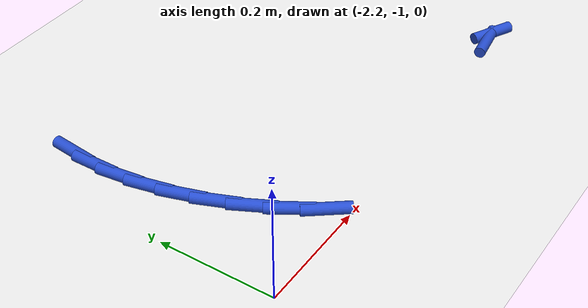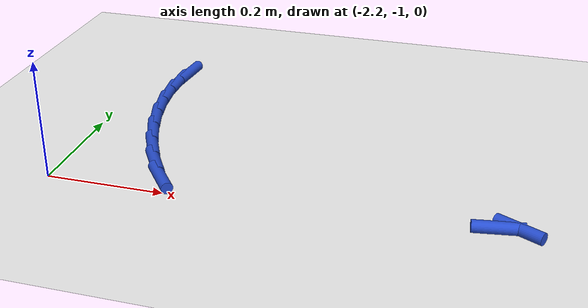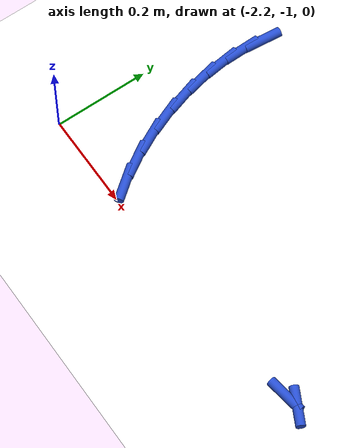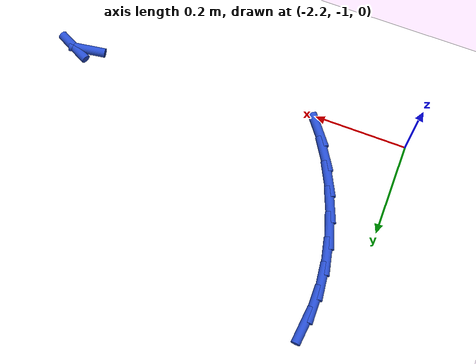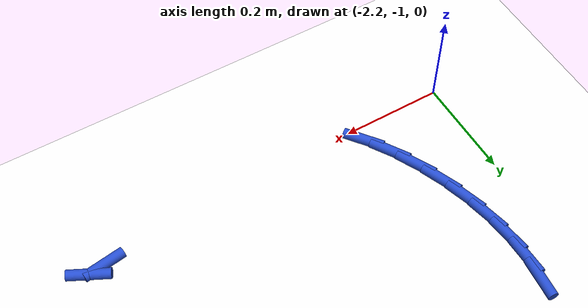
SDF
<sdf version="1.6">
 <world name="default">
  <model name="ground_plane">
   <static>1</static>
   <link name="link">
    <collision name="collision">
     <geometry><plane><normal>0 0 1</normal><size>100 100</size></plane></geometry>
     <surface><friction><ode><mu>100</mu><mu2>50</mu2></ode></friction></surface>
    </collision>
    <visual name="visual">
     <cast_shadows>0</cast_shadows>
     <geometry><plane><normal>0 0 1</normal><size>100 100</size></plane></geometry>
     <material>
      <script><uri>file://media/materials/scripts/gazebo.material</uri><name>Gazebo/WhiteGlow</name></script>
     </material>
    </visual>
   </link>
  </model>
  <model name="line">
   <link name="link_94">
    <pose>-2.1228163236060706 -0.5646316994664993 0.01 0 1.57 1.4698711564828346</pose>
    <collision name="collision">
     <geometry><cylinder><radius>0.01</radius><length>0.08</length></cylinder></geometry>
    </collision>
    <visual name="visual">
     <material>
      <script><name>Gazebo/Blue</name><uri>file://media/materials/scripts/gazebo.material</uri></script>
     </material>
     <geometry><cylinder><radius>0.01</radius><length>0.08</length></cylinder></geometry>
    </visual>
   </link>
   <link name="link_95">
    <pose>-2.127615079992258 -0.6120178182616356 0.01 0 1.57 -1.5533062687913195</pose>
    <collision name="collision">
     <geometry><cylinder><radius>0.01</radius><length>0.08</length></cylinder></geometry>
    </collision>
    <visual name="visual">
     <material>
      <script><name>Gazebo/Blue</name><uri>file://media/materials/scripts/gazebo.material</uri></script>
     </material>
     <geometry><cylinder><radius>0.01</radius><length>0.08</length></cylinder></geometry>
    </visual>
   </link>
   <link name="link_96">
    <pose>-2.126739090122472 -0.6620977291113781 0.01 0 1.57 -1.4459167454490598</pose>
    <collision name="collision">
     <geometry><cylinder><radius>0.01</radius><length>0.08</length></cylinder></geometry>
    </collision>
    <visual name="visual">
     <material>
      <script><name>Gazebo/Blue</name><uri>file://media/materials/scripts/gazebo.material</uri></script>
     </material>
     <geometry><cylinder><radius>0.01</radius><length>0.08</length></cylinder></geometry>
    </visual>
   </link>
   <link name="link_97">
    <pose>-2.120198588026109 -0.7141996589241612 0.01 0 1.57 -1.3514911201738447</pose>
    <collision name="collision">
     <geometry><cylinder><radius>0.01</radius><length>0.08</length></cylinder></geometry>
    </collision>
    <visual name="visual">
     <material>
      <script><name>Gazebo/Blue</name><uri>file://media/materials/scripts/gazebo.material</uri></script>
     </material>
     <geometry><cylinder><radius>0.01</radius><length>0.08</length></cylinder></geometry>
    </visual>
   </link>
   <link name="link_98">
    <pose>-2.108368124961698 -0.7672772451023554 0.01 0 1.57 -1.2648053873676295</pose>
    <collision name="collision">
     <geometry><cylinder><radius>0.01</radius><length>0.08</length></cylinder></geometry>
    </collision>
    <visual name="visual">
     <material>
      <script><name>Gazebo/Blue</name><uri>file://media/materials/scripts/gazebo.material</uri></script>
     </material>
     <geometry><cylinder><radius>0.01</radius><length>0.08</length></cylinder></geometry>
    </visual>
   </link>
   <link name="link_99">
    <pose>-2.0916227336219175 -0.8202836300396862 0.01 0 1.57 -1.181516415351661</pose>
    <collision name="collision">
     <geometry><cylinder><radius>0.01</radius><length>0.08</length></cylinder></geometry>
    </collision>
    <visual name="visual">
     <material>
      <script><name>Gazebo/Blue</name><uri>file://media/materials/scripts/gazebo.material</uri></script>
     </material>
     <geometry><cylinder><radius>0.01</radius><length>0.08</length></cylinder></geometry>
    </visual>
   </link>
   <link name="link_100">
    <pose>-2.0703374466994426 -0.8721719561298746 0.01 0 1.57 -1.0977261099730486</pose>
    <collision name="collision">
     <geometry><cylinder><radius>0.01</radius><length>0.08</length></cylinder></geometry>
    </collision>
    <visual name="visual">
     <material>
      <script><name>Gazebo/Blue</name><uri>file://media/materials/scripts/gazebo.material</uri></script>
     </material>
     <geometry><cylinder><radius>0.01</radius><length>0.08</length></cylinder></geometry>
    </visual>
   </link>
   <link name="link_101">
    <pose>-2.0448872968869516 -0.9218953657666458 0.01 0 1.57 -1.009569811970077</pose>
    <collision name="collision">
     <geometry><cylinder><radius>0.01</radius><length>0.08</length></cylinder></geometry>
    </collision>
    <visual name="visual">
     <material>
      <script><name>Gazebo/Blue</name><uri>file://media/materials/scripts/gazebo.material</uri></script>
     </material>
     <geometry><cylinder><radius>0.01</radius><length>0.08</length></cylinder></geometry>
    </visual>
   </link>
   <link name="link_102">
    <pose>-2.01564731687712 -0.968407001343723 0.01 0 1.57 -0.9128376475109375</pose>
    <collision name="collision">
     <geometry><cylinder><radius>0.01</radius><length>0.08</length></cylinder></geometry>
    </collision>
    <visual name="visual">
     <material>
      <script><name>Gazebo/Blue</name><uri>file://media/materials/scripts/gazebo.material</uri></script>
     </material>
     <geometry><cylinder><radius>0.01</radius><length>0.08</length></cylinder></geometry>
    </visual>
   </link>
   <link name="link_115">
    <pose>-1.4821754533032354 -0.9710913972841836 0.01 0 1.57 0.1494044259472622</pose>
    <collision name="collision">
     <geometry><cylinder><radius>0.01</radius><length>0.08</length></cylinder></geometry>
    </collision>
    <visual name="visual">
     <material>
      <script><name>Gazebo/Blue</name><uri>file://media/materials/scripts/gazebo.material</uri></script>
     </material>
     <geometry><cylinder><radius>0.01</radius><length>0.08</length></cylinder></geometry>
    </visual>
   </link>
   <link name="link_116">
    <pose>-1.4522742704491287 -0.9665904890008559 0.01 0 1.57 -0.4684356160522692</pose>
    <collision name="collision">
     <geometry><cylinder><radius>0.01</radius><length>0.08</length></cylinder></geometry>
    </collision>
    <visual name="visual">
     <material>
      <script><name>Gazebo/Blue</name><uri>file://media/materials/scripts/gazebo.material</uri></script>
     </material>
     <geometry><cylinder><radius>0.01</radius><length>0.08</length></cylinder></geometry>
    </visual>
   </link>
  </model>
 </world>
</sdf>
